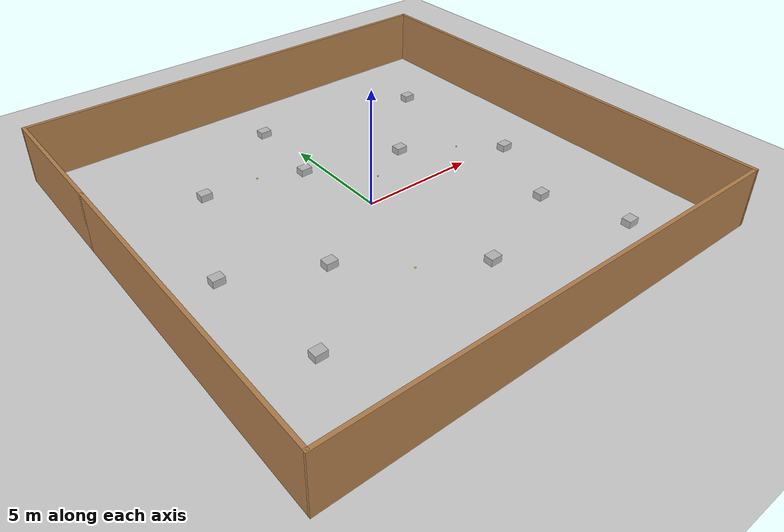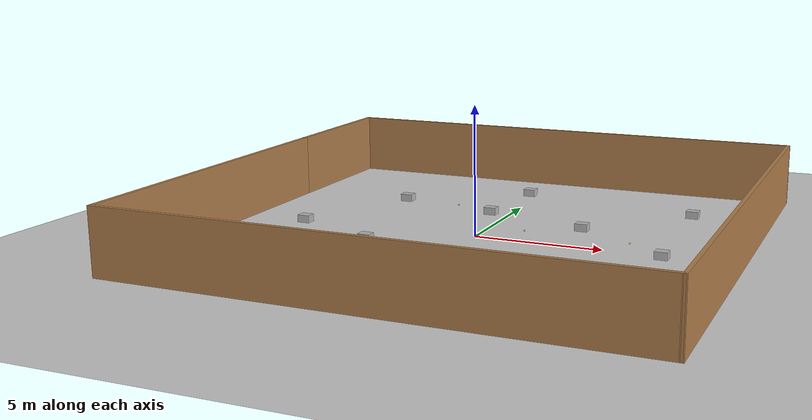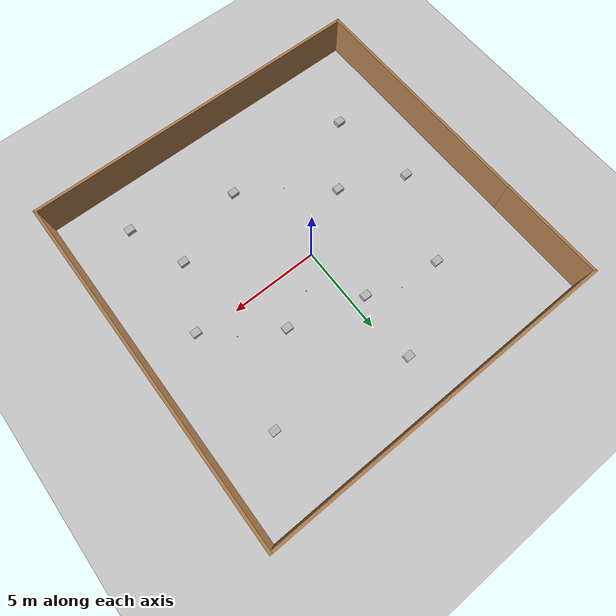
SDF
<sdf version="1.7">
 <world name="default">
  <light name="sun" type="directional">
   <pose>0 0 10 0 -0 0</pose>
   <diffuse>0.8 0.8 0.8 1</diffuse>
   <specular>0.2 0.2 0.2 1</specular>
   <attenuation>
    <range>1000</range>
    <constant>0.9</constant>
    <linear>0.01</linear>
    <quadratic>0.001</quadratic>
   </attenuation>
   <direction>-0.5 0.1 -0.9</direction>
   <spot><inner_angle>0</inner_angle><outer_angle>0</outer_angle><falloff>0</falloff></spot>
  </light>
  <model name="ground_plane">
   <static>1</static>
   <link name="link">
    <collision name="collision">
     <geometry><plane><normal>0 0 1</normal><size>100 100</size></plane></geometry>
     <surface>
      <contact><collide_bitmask>65535</collide_bitmask></contact>
      <friction><ode><mu>100</mu><mu2>50</mu2></ode></friction>
     </surface>
    </collision>
    <visual name="visual">
     <cast_shadows>0</cast_shadows>
     <geometry><plane><normal>0 0 1</normal><size>100 100</size></plane></geometry>
     <material>
      <script><uri>file://media/materials/scripts/gazebo.material</uri><name>Gazebo/Grey</name></script>
     </material>
    </visual>
   </link>
  </model>
  <gravity>0 0 -9.8</gravity>
  <magnetic_field>6e-06 2.3e-05 -4.2e-05</magnetic_field>
  <atmosphere type="adiabatic"/>
  <physics type="ode">
   <max_step_size>0.001</max_step_size>
   <real_time_factor>1</real_time_factor>
   <real_time_update_rate>1000</real_time_update_rate>
  </physics>
  <scene><ambient>0.4 0.4 0.4 1</ambient><background>0.7 0.7 0.7 1</background><shadows>1</shadows></scene>
  <spherical_coordinates>
   <surface_model>EARTH_WGS84</surface_model>
   <latitude_deg>0</latitude_deg>
   <longitude_deg>0</longitude_deg>
   <elevation>0</elevation>
   <heading_deg>0</heading_deg>
  </spherical_coordinates>
  <model name="Area_Wall">
   <pose>0.171387 0.07042 0 0 -0 0</pose>
   <link name="Wall_10">
    <collision name="Wall_10_Collision">
     <geometry><box><size>19.847 0.15 2.5</size></box></geometry>
     <pose>0 0 1.25 0 -0 0</pose>
    </collision>
    <visual name="Wall_10_Visual">
     <pose>0 0 1.25 0 -0 0</pose>
     <geometry><box><size>19.847 0.15 2.5</size></box></geometry>
     <material>
      <script><uri>file://media/materials/scripts/gazebo.material</uri><name>Gazebo/Wood</name></script>
      <ambient>1 1 1 1</ambient>
     </material>
     <meta><layer>0</layer></meta>
    </visual>
    <pose>0.036878 -9.83248 0 0 -0 -0.006092</pose>
   </link>
   <link name="Wall_11">
    <collision name="Wall_11_Collision">
     <geometry><box><size>19.935 0.15 2.5</size></box></geometry>
     <pose>0 0 1.25 0 -0 0</pose>
    </collision>
    <visual name="Wall_11_Visual">
     <pose>0 0 1.25 0 -0 0</pose>
     <geometry><box><size>19.935 0.15 2.5</size></box></geometry>
     <material>
      <script><uri>file://media/materials/scripts/gazebo.material</uri><name>Gazebo/Wood</name></script>
      <ambient>1 1 1 1</ambient>
     </material>
     <meta><layer>0</layer></meta>
    </visual>
    <pose>9.92521 1.9e-05 0 0 -0 1.5708</pose>
   </link>
   <link name="Wall_12">
    <collision name="Wall_12_Collision">
     <geometry><box><size>20 0.15 2.5</size></box></geometry>
     <pose>0 0 1.25 0 -0 0</pose>
    </collision>
    <visual name="Wall_12_Visual">
     <pose>0 0 1.25 0 -0 0</pose>
     <geometry><box><size>20 0.15 2.5</size></box></geometry>
     <material>
      <script><uri>file://media/materials/scripts/gazebo.material</uri><name>Gazebo/Wood</name></script>
      <ambient>1 1 1 1</ambient>
     </material>
     <meta><layer>0</layer></meta>
    </visual>
    <pose>0.000208 9.89251 0 0 -0 3.14159</pose>
   </link>
   <link name="Wall_14">
    <collision name="Wall_14_Collision">
     <geometry><box><size>6.12009 0.15 2.5</size></box></geometry>
     <pose>0 0 1.25 0 -0 0</pose>
    </collision>
    <visual name="Wall_14_Visual">
     <pose>0 0 1.25 0 -0 0</pose>
     <geometry><box><size>6.12009 0.15 2.5</size></box></geometry>
     <material>
      <script><uri>file://media/materials/scripts/gazebo.material</uri><name>Gazebo/Wood</name></script>
      <ambient>1 1 1 1</ambient>
     </material>
     <meta><layer>0</layer></meta>
    </visual>
    <pose>-9.90812 6.90751 0 0 -0 1.57638</pose>
   </link>
   <link name="Wall_9">
    <collision name="Wall_9_Collision">
     <geometry><box><size>13.8052 0.15 2.5</size></box></geometry>
     <pose>0 0 1.25 0 -0 0</pose>
    </collision>
    <visual name="Wall_9_Visual">
     <pose>0 0 1.25 0 -0 0</pose>
     <geometry><box><size>13.8052 0.15 2.5</size></box></geometry>
     <material>
      <script><uri>file://media/materials/scripts/gazebo.material</uri><name>Gazebo/Wood</name></script>
      <ambient>1 1 1 1</ambient>
     </material>
     <meta><layer>0</layer></meta>
    </visual>
    <pose>-9.85145 -2.90498 0 0 -0 -1.56494</pose>
   </link>
   <static>1</static>
  </model>
  <model name="cardboard_box">
   <pose>3.47149 2.39579 0.149 0 -0 0</pose>
   <link name="link">
    <inertial>
     <mass>2</mass>
     <inertia>
      <ixx>0.0416667</ixx>
      <ixy>0</ixy>
      <ixz>0</ixz>
      <iyy>0.0566667</iyy>
      <iyz>0</iyz>
      <izz>0.0683333</izz>
     </inertia>
    </inertial>
    <collision name="collision">
     <geometry><box><size>0.5 0.4 0.3</size></box></geometry>
     <surface>
      <friction><ode><mu>1</mu><mu2>1</mu2></ode></friction>
      <contact><ode><kp>1e+07</kp><kd>1</kd><min_depth>0.001</min_depth><max_vel>0.1</max_vel></ode></contact>
     </surface>
    </collision>
    <visual name="visual">
     <pose>0 0 -0.15 0 -0 0</pose>
     <geometry>
      <mesh><uri>model://cardboard_box/meshes/cardboard_box.dae</uri><scale>1.25932 1.00745 0.755591</scale></mesh>
     </geometry>
    </visual>
   </link>
  </model>
  <model name="cardboard_box_clone">
   <pose>-4.97696 4.45065 0.149 0 -0 0</pose>
   <link name="link">
    <inertial>
     <mass>2</mass>
     <inertia>
      <ixx>0.0416667</ixx>
      <ixy>0</ixy>
      <ixz>0</ixz>
      <iyy>0.0566667</iyy>
      <iyz>0</iyz>
      <izz>0.0683333</izz>
     </inertia>
    </inertial>
    <collision name="collision">
     <geometry><box><size>0.5 0.4 0.3</size></box></geometry>
     <surface>
      <friction><ode><mu>1</mu><mu2>1</mu2></ode></friction>
      <contact><ode><kp>1e+07</kp><kd>1</kd><min_depth>0.001</min_depth><max_vel>0.1</max_vel></ode></contact>
     </surface>
    </collision>
    <visual name="visual">
     <pose>0 0 -0.15 0 -0 0</pose>
     <geometry>
      <mesh><uri>model://cardboard_box/meshes/cardboard_box.dae</uri><scale>1.25932 1.00745 0.755591</scale></mesh>
     </geometry>
    </visual>
   </link>
  </model>
  <model name="cardboard_box_clone_0">
   <pose>-3.56443 -2.09488 0.149 0 -0 0</pose>
   <link name="link">
    <inertial>
     <mass>2</mass>
     <inertia>
      <ixx>0.0416667</ixx>
      <ixy>0</ixy>
      <ixz>0</ixz>
      <iyy>0.0566667</iyy>
      <iyz>0</iyz>
      <izz>0.0683333</izz>
     </inertia>
    </inertial>
    <collision name="collision">
     <geometry><box><size>0.5 0.4 0.3</size></box></geometry>
     <surface>
      <friction><ode><mu>1</mu><mu2>1</mu2></ode></friction>
      <contact><ode><kp>1e+07</kp><kd>1</kd><min_depth>0.001</min_depth><max_vel>0.1</max_vel></ode></contact>
     </surface>
    </collision>
    <visual name="visual">
     <pose>0 0 -0.15 0 -0 0</pose>
     <geometry>
      <mesh><uri>model://cardboard_box/meshes/cardboard_box.dae</uri><scale>1.25932 1.00745 0.755591</scale></mesh>
     </geometry>
    </visual>
   </link>
  </model>
  <model name="cardboard_box_clone_1">
   <pose>5.61144 -3.85418 0.149 0 -0 0</pose>
   <link name="link">
    <inertial>
     <mass>2</mass>
     <inertia>
      <ixx>0.0416667</ixx>
      <ixy>0</ixy>
      <ixz>0</ixz>
      <iyy>0.0566667</iyy>
      <iyz>0</iyz>
      <izz>0.0683333</izz>
     </inertia>
    </inertial>
    <collision name="collision">
     <geometry><box><size>0.5 0.4 0.3</size></box></geometry>
     <surface>
      <friction><ode><mu>1</mu><mu2>1</mu2></ode></friction>
      <contact><ode><kp>1e+07</kp><kd>1</kd><min_depth>0.001</min_depth><max_vel>0.1</max_vel></ode></contact>
     </surface>
    </collision>
    <visual name="visual">
     <pose>0 0 -0.15 0 -0 0</pose>
     <geometry>
      <mesh><uri>model://cardboard_box/meshes/cardboard_box.dae</uri><scale>1.25932 1.00745 0.755591</scale></mesh>
     </geometry>
    </visual>
   </link>
  </model>
  <model name="cardboard_box_clone_2">
   <pose>-0.775347 3.55592 0.149 0 -0 0</pose>
   <link name="link">
    <inertial>
     <mass>2</mass>
     <inertia>
      <ixx>0.0416667</ixx>
      <ixy>0</ixy>
      <ixz>0</ixz>
      <iyy>0.0566667</iyy>
      <iyz>0</iyz>
      <izz>0.0683333</izz>
     </inertia>
    </inertial>
    <collision name="collision">
     <geometry><box><size>0.5 0.4 0.3</size></box></geometry>
     <surface>
      <friction><ode><mu>1</mu><mu2>1</mu2></ode></friction>
      <contact><ode><kp>1e+07</kp><kd>1</kd><min_depth>0.001</min_depth><max_vel>0.1</max_vel></ode></contact>
     </surface>
    </collision>
    <visual name="visual">
     <pose>0 0 -0.15 0 -0 0</pose>
     <geometry>
      <mesh><uri>model://cardboard_box/meshes/cardboard_box.dae</uri><scale>1.25932 1.00745 0.755591</scale></mesh>
     </geometry>
    </visual>
   </link>
  </model>
  <model name="cardboard_box_clone_3">
   <pose>7.00705 5.99738 0.149 0 -0 0</pose>
   <link name="link">
    <inertial>
     <mass>2</mass>
     <inertia>
      <ixx>0.0416667</ixx>
      <ixy>0</ixy>
      <ixz>0</ixz>
      <iyy>0.0566667</iyy>
      <iyz>0</iyz>
      <izz>0.0683333</izz>
     </inertia>
    </inertial>
    <collision name="collision">
     <geometry><box><size>0.5 0.4 0.3</size></box></geometry>
     <surface>
      <friction><ode><mu>1</mu><mu2>1</mu2></ode></friction>
      <contact><ode><kp>1e+07</kp><kd>1</kd><min_depth>0.001</min_depth><max_vel>0.1</max_vel></ode></contact>
     </surface>
    </collision>
    <visual name="visual">
     <pose>0 0 -0.15 0 -0 0</pose>
     <geometry>
      <mesh><uri>model://cardboard_box/meshes/cardboard_box.dae</uri><scale>1.25932 1.00745 0.755591</scale></mesh>
     </geometry>
    </visual>
   </link>
  </model>
  <model name="cardboard_box_clone_4">
   <pose>-0.422214 7.30904 0.149 0 -0 0</pose>
   <link name="link">
    <inertial>
     <mass>2</mass>
     <inertia>
      <ixx>0.0416667</ixx>
      <ixy>0</ixy>
      <ixz>0</ixz>
      <iyy>0.0566667</iyy>
      <iyz>0</iyz>
      <izz>0.0683333</izz>
     </inertia>
    </inertial>
    <collision name="collision">
     <geometry><box><size>0.5 0.4 0.3</size></box></geometry>
     <surface>
      <friction><ode><mu>1</mu><mu2>1</mu2></ode></friction>
      <contact><ode><kp>1e+07</kp><kd>1</kd><min_depth>0.001</min_depth><max_vel>0.1</max_vel></ode></contact>
     </surface>
    </collision>
    <visual name="visual">
     <pose>0 0 -0.15 0 -0 0</pose>
     <geometry>
      <mesh><uri>model://cardboard_box/meshes/cardboard_box.dae</uri><scale>1.25932 1.00745 0.755591</scale></mesh>
     </geometry>
    </visual>
   </link>
  </model>
  <model name="cardboard_box_clone_5">
   <pose>-7.13705 -0.424385 0.149 0 -0 0</pose>
   <link name="link">
    <inertial>
     <mass>2</mass>
     <inertia>
      <ixx>0.0416667</ixx>
      <ixy>0</ixy>
      <ixz>0</ixz>
      <iyy>0.0566667</iyy>
      <iyz>0</iyz>
      <izz>0.0683333</izz>
     </inertia>
    </inertial>
    <collision name="collision">
     <geometry><box><size>0.5 0.4 0.3</size></box></geometry>
     <surface>
      <friction><ode><mu>1</mu><mu2>1</mu2></ode></friction>
      <contact><ode><kp>1e+07</kp><kd>1</kd><min_depth>0.001</min_depth><max_vel>0.1</max_vel></ode></contact>
     </surface>
    </collision>
    <visual name="visual">
     <pose>0 0 -0.15 0 -0 0</pose>
     <geometry>
      <mesh><uri>model://cardboard_box/meshes/cardboard_box.dae</uri><scale>1.25932 1.00745 0.755591</scale></mesh>
     </geometry>
    </visual>
   </link>
  </model>
  <model name="cardboard_box_clone_6">
   <pose>1.14179 -5.52174 0.149 0 -0 0</pose>
   <link name="link">
    <inertial>
     <mass>2</mass>
     <inertia>
      <ixx>0.0416667</ixx>
      <ixy>0</ixy>
      <ixz>0</ixz>
      <iyy>0.0566667</iyy>
      <iyz>0</iyz>
      <izz>0.0683333</izz>
     </inertia>
    </inertial>
    <collision name="collision">
     <geometry><box><size>0.5 0.4 0.3</size></box></geometry>
     <surface>
      <friction><ode><mu>1</mu><mu2>1</mu2></ode></friction>
      <contact><ode><kp>1e+07</kp><kd>1</kd><min_depth>0.001</min_depth><max_vel>0.1</max_vel></ode></contact>
     </surface>
    </collision>
    <visual name="visual">
     <pose>0 0 -0.15 0 -0 0</pose>
     <geometry>
      <mesh><uri>model://cardboard_box/meshes/cardboard_box.dae</uri><scale>1.25932 1.00745 0.755591</scale></mesh>
     </geometry>
    </visual>
   </link>
  </model>
  <model name="cardboard_box_clone_7">
   <pose>-6.39503 -5.42517 0.149 0 -0 0</pose>
   <link name="link">
    <inertial>
     <mass>2</mass>
     <inertia>
      <ixx>0.0416667</ixx>
      <ixy>0</ixy>
      <ixz>0</ixz>
      <iyy>0.0566667</iyy>
      <iyz>0</iyz>
      <izz>0.0683333</izz>
     </inertia>
    </inertial>
    <collision name="collision">
     <geometry><box><size>0.5 0.4 0.3</size></box></geometry>
     <surface>
      <friction><ode><mu>1</mu><mu2>1</mu2></ode></friction>
      <contact><ode><kp>1e+07</kp><kd>1</kd><min_depth>0.001</min_depth><max_vel>0.1</max_vel></ode></contact>
     </surface>
    </collision>
    <visual name="visual">
     <pose>0 0 -0.15 0 -0 0</pose>
     <geometry>
      <mesh><uri>model://cardboard_box/meshes/cardboard_box.dae</uri><scale>1.25932 1.00745 0.755591</scale></mesh>
     </geometry>
    </visual>
   </link>
  </model>
  <model name="cardboard_box_clone_8">
   <pose>7.25396 -0.295256 0.149 0 -0 0</pose>
   <link name="link">
    <inertial>
     <mass>2</mass>
     <inertia>
      <ixx>0.0416667</ixx>
      <ixy>0</ixy>
      <ixz>0</ixz>
      <iyy>0.0566667</iyy>
      <iyz>0</iyz>
      <izz>0.0683333</izz>
     </inertia>
    </inertial>
    <collision name="collision">
     <geometry><box><size>0.5 0.4 0.3</size></box></geometry>
     <surface>
      <friction><ode><mu>1</mu><mu2>1</mu2></ode></friction>
      <contact><ode><kp>1e+07</kp><kd>1</kd><min_depth>0.001</min_depth><max_vel>0.1</max_vel></ode></contact>
     </surface>
    </collision>
    <visual name="visual">
     <pose>0 0 -0.15 0 -0 0</pose>
     <geometry>
      <mesh><uri>model://cardboard_box/meshes/cardboard_box.dae</uri><scale>1.25932 1.00745 0.755591</scale></mesh>
     </geometry>
    </visual>
   </link>
  </model>
  <model name="cardboard_box_clone_9">
   <pose>6.85267 -7.18682 0.149 0 -0 0</pose>
   <link name="link">
    <inertial>
     <mass>2</mass>
     <inertia>
      <ixx>0.0416667</ixx>
      <ixy>0</ixy>
      <ixz>0</ixz>
      <iyy>0.0566667</iyy>
      <iyz>0</iyz>
      <izz>0.0683333</izz>
     </inertia>
    </inertial>
    <collision name="collision">
     <geometry><box><size>0.5 0.4 0.3</size></box></geometry>
     <surface>
      <friction><ode><mu>1</mu><mu2>1</mu2></ode></friction>
      <contact><ode><kp>1e+07</kp><kd>1</kd><min_depth>0.001</min_depth><max_vel>0.1</max_vel></ode></contact>
     </surface>
    </collision>
    <visual name="visual">
     <pose>0 0 -0.15 0 -0 0</pose>
     <geometry>
      <mesh><uri>model://cardboard_box/meshes/cardboard_box.dae</uri><scale>1.25932 1.00745 0.755591</scale></mesh>
     </geometry>
    </visual>
   </link>
  </model>
  <audio><device>default</device></audio>
  <model name="unit_sphere">
   <link name="link">
    <inertial>
     <mass>1</mass>
     <inertia><ixx>0.1</ixx><ixy>0</ixy><ixz>0</ixz><iyy>0.1</iyy><iyz>0</iyz><izz>0.1</izz></inertia>
    </inertial>
    <visual name="visual">
     <geometry><sphere><radius>0.033</radius></sphere></geometry>
     <material>
      <script><name>Gazebo/Yellow</name><uri>file://media/materials/scripts/gazebo.material</uri></script>
      <shader type="pixel"><normal_map>__default__</normal_map></shader>
      <ambient>0 0 0 1</ambient>
      <diffuse>0 0 0 1</diffuse>
      <specular>0 0 0 1</specular>
      <emissive>0 0 0 1</emissive>
     </material>
    </visual>
    <collision name="collision">
     <geometry><sphere><radius>0.033</radius></sphere></geometry>
     <surface>
      <friction>
       <ode><mu>1</mu><mu2>1</mu2><fdir1>0 0 0</fdir1><slip1>0</slip1><slip2>0</slip2></ode>
       <torsional>
        <coefficient>1</coefficient>
        <patch_radius>0</patch_radius>
        <surface_radius>0</surface_radius>
        <use_patch_radius>1</use_patch_radius>
        <ode><slip>0</slip></ode>
       </torsional>
      </friction>
      <bounce><restitution_coefficient>0</restitution_coefficient><threshold>1e+06</threshold></bounce>
      <contact>
       <collide_without_contact>0</collide_without_contact>
       <collide_without_contact_bitmask>1</collide_without_contact_bitmask>
       <collide_bitmask>1</collide_bitmask>
       <ode>
        <soft_cfm>0</soft_cfm>
        <soft_erp>0.2</soft_erp>
        <kp>1e+13</kp>
        <kd>1</kd>
        <max_vel>0.01</max_vel>
        <min_depth>0</min_depth>
       </ode>
       <bullet>
        <split_impulse>1</split_impulse>
        <split_impulse_penetration_threshold>-0.01</split_impulse_penetration_threshold>
        <soft_cfm>0</soft_cfm>
        <soft_erp>0.2</soft_erp>
        <kp>1e+13</kp>
        <kd>1</kd>
       </bullet>
      </contact>
     </surface>
    </collision>
   </link>
   <static>0</static>
   <pose>1.4688 1.4132 0.033 0.000578 0.007158 0.000766</pose>
  </model>
  <model name="unit_sphere_0">
   <link name="link">
    <inertial>
     <mass>1</mass>
     <inertia><ixx>0.1</ixx><ixy>0</ixy><ixz>0</ixz><iyy>0.1</iyy><iyz>0</iyz><izz>0.1</izz></inertia>
    </inertial>
    <visual name="visual">
     <geometry><sphere><radius>0.033</radius></sphere></geometry>
     <material>
      <script><name>Gazebo/Yellow</name><uri>file://media/materials/scripts/gazebo.material</uri></script>
      <shader type="pixel"><normal_map>__default__</normal_map></shader>
      <ambient>0 0 0 1</ambient>
      <diffuse>0 0 0 1</diffuse>
      <specular>0 0 0 1</specular>
      <emissive>0 0 0 1</emissive>
     </material>
    </visual>
    <collision name="collision">
     <geometry><sphere><radius>0.033</radius></sphere></geometry>
     <surface>
      <friction>
       <ode><mu>1</mu><mu2>1</mu2><fdir1>0 0 0</fdir1><slip1>0</slip1><slip2>0</slip2></ode>
       <torsional>
        <coefficient>1</coefficient>
        <patch_radius>0</patch_radius>
        <surface_radius>0</surface_radius>
        <use_patch_radius>1</use_patch_radius>
        <ode><slip>0</slip></ode>
       </torsional>
      </friction>
      <bounce><restitution_coefficient>0</restitution_coefficient><threshold>1e+06</threshold></bounce>
      <contact>
       <collide_without_contact>0</collide_without_contact>
       <collide_without_contact_bitmask>1</collide_without_contact_bitmask>
       <collide_bitmask>1</collide_bitmask>
       <ode>
        <soft_cfm>0</soft_cfm>
        <soft_erp>0.2</soft_erp>
        <kp>1e+13</kp>
        <kd>1</kd>
        <max_vel>0.01</max_vel>
        <min_depth>0</min_depth>
       </ode>
       <bullet>
        <split_impulse>1</split_impulse>
        <split_impulse_penetration_threshold>-0.01</split_impulse_penetration_threshold>
        <soft_cfm>0</soft_cfm>
        <soft_erp>0.2</soft_erp>
        <kp>1e+13</kp>
        <kd>1</kd>
       </bullet>
      </contact>
     </surface>
    </collision>
   </link>
   <static>0</static>
   <pose>-2.58605 4.39864 0.033 0 -0 0</pose>
  </model>
  <model name="unit_sphere_1">
   <link name="link">
    <inertial>
     <mass>1</mass>
     <inertia><ixx>0.1</ixx><ixy>0</ixy><ixz>0</ixz><iyy>0.1</iyy><iyz>0</iyz><izz>0.1</izz></inertia>
    </inertial>
    <visual name="visual">
     <geometry><sphere><radius>0.033</radius></sphere></geometry>
     <material>
      <script><name>Gazebo/Yellow</name><uri>file://media/materials/scripts/gazebo.material</uri></script>
      <shader type="pixel"><normal_map>__default__</normal_map></shader>
      <ambient>0 0 0 1</ambient>
      <diffuse>0 0 0 1</diffuse>
      <specular>0 0 0 1</specular>
      <emissive>0 0 0 1</emissive>
     </material>
    </visual>
    <collision name="collision">
     <geometry><sphere><radius>0.033</radius></sphere></geometry>
     <surface>
      <friction>
       <ode><mu>1</mu><mu2>1</mu2><fdir1>0 0 0</fdir1><slip1>0</slip1><slip2>0</slip2></ode>
       <torsional>
        <coefficient>1</coefficient>
        <patch_radius>0</patch_radius>
        <surface_radius>0</surface_radius>
        <use_patch_radius>1</use_patch_radius>
        <ode><slip>0</slip></ode>
       </torsional>
      </friction>
      <bounce><restitution_coefficient>0</restitution_coefficient><threshold>1e+06</threshold></bounce>
      <contact>
       <collide_without_contact>0</collide_without_contact>
       <collide_without_contact_bitmask>1</collide_without_contact_bitmask>
       <collide_bitmask>1</collide_bitmask>
       <ode>
        <soft_cfm>0</soft_cfm>
        <soft_erp>0.2</soft_erp>
        <kp>1e+13</kp>
        <kd>1</kd>
        <max_vel>0.01</max_vel>
        <min_depth>0</min_depth>
       </ode>
       <bullet>
        <split_impulse>1</split_impulse>
        <split_impulse_penetration_threshold>-0.01</split_impulse_penetration_threshold>
        <soft_cfm>0</soft_cfm>
        <soft_erp>0.2</soft_erp>
        <kp>1e+13</kp>
        <kd>1</kd>
       </bullet>
      </contact>
     </surface>
    </collision>
   </link>
   <static>0</static>
   <pose>-1.26242 -4.07747 0.033 0.00149 -0.000747 0.000429</pose>
  </model>
  <model name="unit_sphere_2">
   <link name="link">
    <inertial>
     <mass>1</mass>
     <inertia><ixx>0.1</ixx><ixy>0</ixy><ixz>0</ixz><iyy>0.1</iyy><iyz>0</iyz><izz>0.1</izz></inertia>
    </inertial>
    <visual name="visual">
     <geometry><sphere><radius>0.033</radius></sphere></geometry>
     <material>
      <script><name>Gazebo/Yellow</name><uri>file://media/materials/scripts/gazebo.material</uri></script>
      <shader type="pixel"><normal_map>__default__</normal_map></shader>
      <ambient>0 0 0 1</ambient>
      <diffuse>0 0 0 1</diffuse>
      <specular>0 0 0 1</specular>
      <emissive>0 0 0 1</emissive>
     </material>
    </visual>
    <collision name="collision">
     <geometry><sphere><radius>0.033</radius></sphere></geometry>
     <surface>
      <friction>
       <ode><mu>1</mu><mu2>1</mu2><fdir1>0 0 0</fdir1><slip1>0</slip1><slip2>0</slip2></ode>
       <torsional>
        <coefficient>1</coefficient>
        <patch_radius>0</patch_radius>
        <surface_radius>0</surface_radius>
        <use_patch_radius>1</use_patch_radius>
        <ode><slip>0</slip></ode>
       </torsional>
      </friction>
      <bounce><restitution_coefficient>0</restitution_coefficient><threshold>1e+06</threshold></bounce>
      <contact>
       <collide_without_contact>0</collide_without_contact>
       <collide_without_contact_bitmask>1</collide_without_contact_bitmask>
       <collide_bitmask>1</collide_bitmask>
       <ode>
        <soft_cfm>0</soft_cfm>
        <soft_erp>0.2</soft_erp>
        <kp>1e+13</kp>
        <kd>1</kd>
        <max_vel>0.01</max_vel>
        <min_depth>0</min_depth>
       </ode>
       <bullet>
        <split_impulse>1</split_impulse>
        <split_impulse_penetration_threshold>-0.01</split_impulse_penetration_threshold>
        <soft_cfm>0</soft_cfm>
        <soft_erp>0.2</soft_erp>
        <kp>1e+13</kp>
        <kd>1</kd>
       </bullet>
      </contact>
     </surface>
    </collision>
   </link>
   <static>0</static>
   <pose>5.71447 1.13938 0.033 0 -0 0</pose>
  </model>
 </world>
</sdf>
